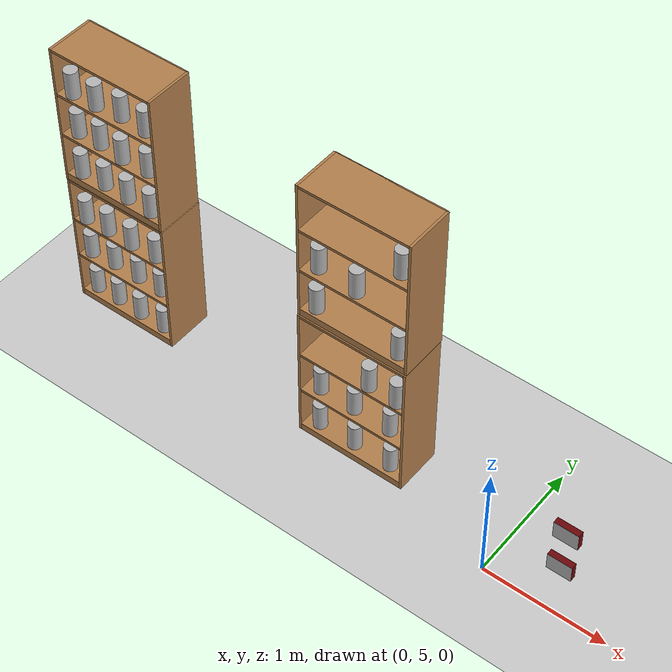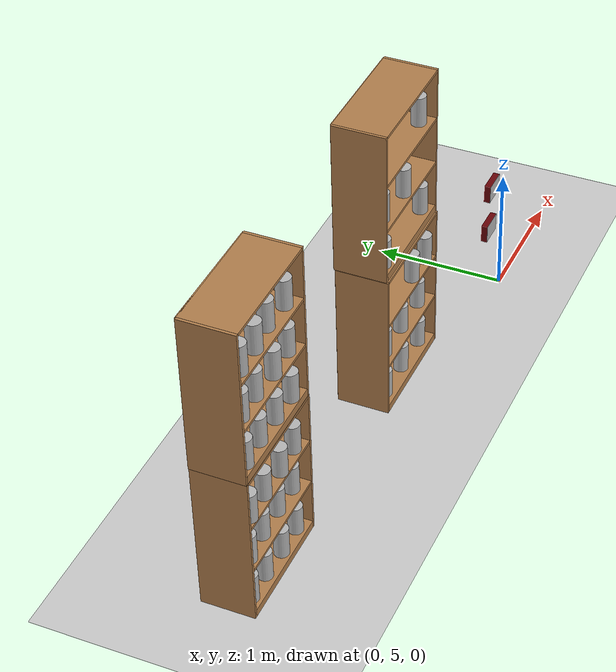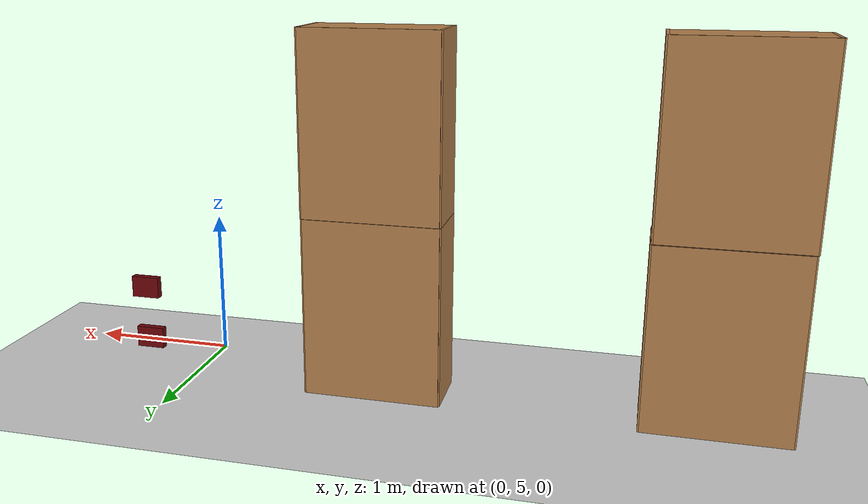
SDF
<sdf version="1.7">
 <world name="default">
  <model name="ground_plane">
   <static>1</static>
   <link name="link">
    <collision name="collision">
     <geometry><plane><normal>0 0 1</normal><size>100 100</size></plane></geometry>
     <surface><friction><ode><mu>100</mu><mu2>50</mu2></ode></friction></surface>
    </collision>
    <visual name="visual">
     <cast_shadows>0</cast_shadows>
     <geometry><plane><normal>0 0 1</normal><size>100 100</size></plane></geometry>
     <material>
      <script><uri>file://media/materials/scripts/gazebo.material</uri><name>Gazebo/Grey</name></script>
     </material>
    </visual>
   </link>
  </model>
  <model name="bookshelf_2_clone">
   <static>1</static>
   <link name="link">
    <inertial><mass>1</mass></inertial>
    <collision name="back">
     <pose>0 0.005 0.6 0 -0 0</pose>
     <geometry><box><size>0.9 0.01 1.2</size></box></geometry>
    </collision>
    <visual name="visual1">
     <pose>0 0.005 0.6 0 -0 0</pose>
     <geometry><box><size>0.9 0.01 1.2</size></box></geometry>
     <material>
      <script><uri>file://media/materials/scripts/gazebo.material</uri><name>Gazebo/Wood</name></script>
     </material>
    </visual>
    <collision name="left_side">
     <pose>0.45 -0.195 0.6 0 -0 0</pose>
     <geometry><box><size>0.02 0.4 1.2</size></box></geometry>
    </collision>
    <visual name="visual2">
     <pose>0.45 -0.195 0.6 0 -0 0</pose>
     <geometry><box><size>0.02 0.4 1.2</size></box></geometry>
     <material>
      <script><uri>file://media/materials/scripts/gazebo.material</uri><name>Gazebo/Wood</name></script>
     </material>
    </visual>
    <collision name="right_side">
     <pose>-0.45 -0.195 0.6 0 -0 0</pose>
     <geometry><box><size>0.02 0.4 1.2</size></box></geometry>
    </collision>
    <visual name="visual3">
     <pose>-0.45 -0.195 0.6 0 -0 0</pose>
     <geometry><box><size>0.02 0.4 1.2</size></box></geometry>
     <material>
      <script><uri>file://media/materials/scripts/gazebo.material</uri><name>Gazebo/Wood</name></script>
     </material>
    </visual>
    <collision name="bottom">
     <pose>0 -0.195 0.03 0 -0 0</pose>
     <geometry><box><size>0.88 0.4 0.06</size></box></geometry>
    </collision>
    <visual name="visual4">
     <pose>0 -0.195 0.03 0 -0 0</pose>
     <geometry><box><size>0.88 0.4 0.06</size></box></geometry>
     <material>
      <script><uri>file://media/materials/scripts/gazebo.material</uri><name>Gazebo/Wood</name></script>
     </material>
    </visual>
    <collision name="top">
     <pose>0 -0.195 1.19 0 -0 0</pose>
     <geometry><box><size>0.88 0.4 0.02</size></box></geometry>
    </collision>
    <visual name="visual5">
     <pose>0 -0.195 1.19 0 -0 0</pose>
     <geometry><box><size>0.88 0.4 0.02</size></box></geometry>
     <material>
      <script><uri>file://media/materials/scripts/gazebo.material</uri><name>Gazebo/Wood</name></script>
     </material>
    </visual>
    <collision name="low_shelf">
     <pose>0 -0.195 0.43 0 -0 0</pose>
     <geometry><box><size>0.88 0.4 0.02</size></box></geometry>
    </collision>
    <visual name="visual6">
     <pose>0 -0.195 0.43 0 -0 0</pose>
     <geometry><box><size>0.88 0.4 0.02</size></box></geometry>
     <material>
      <script><uri>file://media/materials/scripts/gazebo.material</uri><name>Gazebo/Wood</name></script>
     </material>
    </visual>
    <collision name="high_shelf">
     <pose>0 -0.195 0.8 0 -0 0</pose>
     <geometry><box><size>0.88 0.4 0.02</size></box></geometry>
    </collision>
    <visual name="visual7">
     <pose>0 -0.195 0.8 0 -0 0</pose>
     <geometry><box><size>0.88 0.4 0.02</size></box></geometry>
     <material>
      <script><uri>file://media/materials/scripts/gazebo.material</uri><name>Gazebo/Wood</name></script>
     </material>
    </visual>
   </link>
   <pose>-1.30264 5.59901 0 0 -0 0</pose>
  </model>
  <model name="bookshelf_2_clone_clone">
   <static>1</static>
   <link name="link">
    <inertial><mass>1</mass></inertial>
    <collision name="back">
     <pose>0 0.005 0.6 0 -0 0</pose>
     <geometry><box><size>0.9 0.01 1.2</size></box></geometry>
    </collision>
    <visual name="visual1">
     <pose>0 0.005 0.6 0 -0 0</pose>
     <geometry><box><size>0.9 0.01 1.2</size></box></geometry>
     <material>
      <script><uri>file://media/materials/scripts/gazebo.material</uri><name>Gazebo/Wood</name></script>
     </material>
    </visual>
    <collision name="left_side">
     <pose>0.45 -0.195 0.6 0 -0 0</pose>
     <geometry><box><size>0.02 0.4 1.2</size></box></geometry>
    </collision>
    <visual name="visual2">
     <pose>0.45 -0.195 0.6 0 -0 0</pose>
     <geometry><box><size>0.02 0.4 1.2</size></box></geometry>
     <material>
      <script><uri>file://media/materials/scripts/gazebo.material</uri><name>Gazebo/Wood</name></script>
     </material>
    </visual>
    <collision name="right_side">
     <pose>-0.45 -0.195 0.6 0 -0 0</pose>
     <geometry><box><size>0.02 0.4 1.2</size></box></geometry>
    </collision>
    <visual name="visual3">
     <pose>-0.45 -0.195 0.6 0 -0 0</pose>
     <geometry><box><size>0.02 0.4 1.2</size></box></geometry>
     <material>
      <script><uri>file://media/materials/scripts/gazebo.material</uri><name>Gazebo/Wood</name></script>
     </material>
    </visual>
    <collision name="bottom">
     <pose>0 -0.195 0.03 0 -0 0</pose>
     <geometry><box><size>0.88 0.4 0.06</size></box></geometry>
    </collision>
    <visual name="visual4">
     <pose>0 -0.195 0.03 0 -0 0</pose>
     <geometry><box><size>0.88 0.4 0.06</size></box></geometry>
     <material>
      <script><uri>file://media/materials/scripts/gazebo.material</uri><name>Gazebo/Wood</name></script>
     </material>
    </visual>
    <collision name="top">
     <pose>0 -0.195 1.19 0 -0 0</pose>
     <geometry><box><size>0.88 0.4 0.02</size></box></geometry>
    </collision>
    <visual name="visual5">
     <pose>0 -0.195 1.19 0 -0 0</pose>
     <geometry><box><size>0.88 0.4 0.02</size></box></geometry>
     <material>
      <script><uri>file://media/materials/scripts/gazebo.material</uri><name>Gazebo/Wood</name></script>
     </material>
    </visual>
    <collision name="low_shelf">
     <pose>0 -0.195 0.43 0 -0 0</pose>
     <geometry><box><size>0.88 0.4 0.02</size></box></geometry>
    </collision>
    <visual name="visual6">
     <pose>0 -0.195 0.43 0 -0 0</pose>
     <geometry><box><size>0.88 0.4 0.02</size></box></geometry>
     <material>
      <script><uri>file://media/materials/scripts/gazebo.material</uri><name>Gazebo/Wood</name></script>
     </material>
    </visual>
    <collision name="high_shelf">
     <pose>0 -0.195 0.8 0 -0 0</pose>
     <geometry><box><size>0.88 0.4 0.02</size></box></geometry>
    </collision>
    <visual name="visual7">
     <pose>0 -0.195 0.8 0 -0 0</pose>
     <geometry><box><size>0.88 0.4 0.02</size></box></geometry>
     <material>
      <script><uri>file://media/materials/scripts/gazebo.material</uri><name>Gazebo/Wood</name></script>
     </material>
    </visual>
   </link>
   <pose>-3.46853 5.62428 0 0 -0 0</pose>
  </model>
  <model name="bookshelf_3_clone">
   <static>1</static>
   <link name="link">
    <inertial><mass>1</mass></inertial>
    <collision name="back">
     <pose>0 0.005 0.6 0 -0 0</pose>
     <geometry><box><size>0.9 0.01 1.2</size></box></geometry>
    </collision>
    <visual name="visual1">
     <pose>0 0.005 0.6 0 -0 0</pose>
     <geometry><box><size>0.9 0.01 1.2</size></box></geometry>
     <material>
      <script><uri>file://media/materials/scripts/gazebo.material</uri><name>Gazebo/Wood</name></script>
     </material>
    </visual>
    <collision name="left_side">
     <pose>0.45 -0.195 0.6 0 -0 0</pose>
     <geometry><box><size>0.02 0.4 1.2</size></box></geometry>
    </collision>
    <visual name="visual2">
     <pose>0.45 -0.195 0.6 0 -0 0</pose>
     <geometry><box><size>0.02 0.4 1.2</size></box></geometry>
     <material>
      <script><uri>file://media/materials/scripts/gazebo.material</uri><name>Gazebo/Wood</name></script>
     </material>
    </visual>
    <collision name="right_side">
     <pose>-0.45 -0.195 0.6 0 -0 0</pose>
     <geometry><box><size>0.02 0.4 1.2</size></box></geometry>
    </collision>
    <visual name="visual3">
     <pose>-0.45 -0.195 0.6 0 -0 0</pose>
     <geometry><box><size>0.02 0.4 1.2</size></box></geometry>
     <material>
      <script><uri>file://media/materials/scripts/gazebo.material</uri><name>Gazebo/Wood</name></script>
     </material>
    </visual>
    <collision name="bottom">
     <pose>0 -0.195 0.03 0 -0 0</pose>
     <geometry><box><size>0.88 0.4 0.06</size></box></geometry>
    </collision>
    <visual name="visual4">
     <pose>0 -0.195 0.03 0 -0 0</pose>
     <geometry><box><size>0.88 0.4 0.06</size></box></geometry>
     <material>
      <script><uri>file://media/materials/scripts/gazebo.material</uri><name>Gazebo/Wood</name></script>
     </material>
    </visual>
    <collision name="top">
     <pose>0 -0.195 1.19 0 -0 0</pose>
     <geometry><box><size>0.88 0.4 0.02</size></box></geometry>
    </collision>
    <visual name="visual5">
     <pose>0 -0.195 1.19 0 -0 0</pose>
     <geometry><box><size>0.88 0.4 0.02</size></box></geometry>
     <material>
      <script><uri>file://media/materials/scripts/gazebo.material</uri><name>Gazebo/Wood</name></script>
     </material>
    </visual>
    <collision name="low_shelf">
     <pose>0 -0.195 0.43 0 -0 0</pose>
     <geometry><box><size>0.88 0.4 0.02</size></box></geometry>
    </collision>
    <visual name="visual6">
     <pose>0 -0.195 0.43 0 -0 0</pose>
     <geometry><box><size>0.88 0.4 0.02</size></box></geometry>
     <material>
      <script><uri>file://media/materials/scripts/gazebo.material</uri><name>Gazebo/Wood</name></script>
     </material>
    </visual>
    <collision name="high_shelf">
     <pose>0 -0.195 0.8 0 -0 0</pose>
     <geometry><box><size>0.88 0.4 0.02</size></box></geometry>
    </collision>
    <visual name="visual7">
     <pose>0 -0.195 0.8 0 -0 0</pose>
     <geometry><box><size>0.88 0.4 0.02</size></box></geometry>
     <material>
      <script><uri>file://media/materials/scripts/gazebo.material</uri><name>Gazebo/Wood</name></script>
     </material>
    </visual>
   </link>
   <pose>-1.30336 5.6079 1.20481 0 -0 0</pose>
  </model>
  <model name="bookshelf_3_clone_clone">
   <static>1</static>
   <link name="link">
    <inertial><mass>1</mass></inertial>
    <collision name="back">
     <pose>0 0.005 0.6 0 -0 0</pose>
     <geometry><box><size>0.9 0.01 1.2</size></box></geometry>
    </collision>
    <visual name="visual1">
     <pose>0 0.005 0.6 0 -0 0</pose>
     <geometry><box><size>0.9 0.01 1.2</size></box></geometry>
     <material>
      <script><uri>file://media/materials/scripts/gazebo.material</uri><name>Gazebo/Wood</name></script>
     </material>
    </visual>
    <collision name="left_side">
     <pose>0.45 -0.195 0.6 0 -0 0</pose>
     <geometry><box><size>0.02 0.4 1.2</size></box></geometry>
    </collision>
    <visual name="visual2">
     <pose>0.45 -0.195 0.6 0 -0 0</pose>
     <geometry><box><size>0.02 0.4 1.2</size></box></geometry>
     <material>
      <script><uri>file://media/materials/scripts/gazebo.material</uri><name>Gazebo/Wood</name></script>
     </material>
    </visual>
    <collision name="right_side">
     <pose>-0.45 -0.195 0.6 0 -0 0</pose>
     <geometry><box><size>0.02 0.4 1.2</size></box></geometry>
    </collision>
    <visual name="visual3">
     <pose>-0.45 -0.195 0.6 0 -0 0</pose>
     <geometry><box><size>0.02 0.4 1.2</size></box></geometry>
     <material>
      <script><uri>file://media/materials/scripts/gazebo.material</uri><name>Gazebo/Wood</name></script>
     </material>
    </visual>
    <collision name="bottom">
     <pose>0 -0.195 0.03 0 -0 0</pose>
     <geometry><box><size>0.88 0.4 0.06</size></box></geometry>
    </collision>
    <visual name="visual4">
     <pose>0 -0.195 0.03 0 -0 0</pose>
     <geometry><box><size>0.88 0.4 0.06</size></box></geometry>
     <material>
      <script><uri>file://media/materials/scripts/gazebo.material</uri><name>Gazebo/Wood</name></script>
     </material>
    </visual>
    <collision name="top">
     <pose>0 -0.195 1.19 0 -0 0</pose>
     <geometry><box><size>0.88 0.4 0.02</size></box></geometry>
    </collision>
    <visual name="visual5">
     <pose>0 -0.195 1.19 0 -0 0</pose>
     <geometry><box><size>0.88 0.4 0.02</size></box></geometry>
     <material>
      <script><uri>file://media/materials/scripts/gazebo.material</uri><name>Gazebo/Wood</name></script>
     </material>
    </visual>
    <collision name="low_shelf">
     <pose>0 -0.195 0.43 0 -0 0</pose>
     <geometry><box><size>0.88 0.4 0.02</size></box></geometry>
    </collision>
    <visual name="visual6">
     <pose>0 -0.195 0.43 0 -0 0</pose>
     <geometry><box><size>0.88 0.4 0.02</size></box></geometry>
     <material>
      <script><uri>file://media/materials/scripts/gazebo.material</uri><name>Gazebo/Wood</name></script>
     </material>
    </visual>
    <collision name="high_shelf">
     <pose>0 -0.195 0.8 0 -0 0</pose>
     <geometry><box><size>0.88 0.4 0.02</size></box></geometry>
    </collision>
    <visual name="visual7">
     <pose>0 -0.195 0.8 0 -0 0</pose>
     <geometry><box><size>0.88 0.4 0.02</size></box></geometry>
     <material>
      <script><uri>file://media/materials/scripts/gazebo.material</uri><name>Gazebo/Wood</name></script>
     </material>
    </visual>
   </link>
   <pose>-3.47373 5.62521 1.20481 0 -0 0</pose>
  </model>
  <model name="beer">
   <link name="link">
    <pose>0 0 0.115 0 -0 0</pose>
    <inertial>
     <mass>0.39</mass>
     <inertia><ixx>0.00058</ixx><ixy>0</ixy><ixz>0</ixz><iyy>0.00058</iyy><iyz>0</iyz><izz>0.00019</izz></inertia>
    </inertial>
    <collision name="collision">
     <geometry><cylinder><radius>0.055</radius><length>0.23</length></cylinder></geometry>
    </collision>
    <visual name="visual">
     <geometry><cylinder><radius>0.055</radius><length>0.23</length></cylinder></geometry>
     <material>
      <script>
       <uri>model://beer/materials/scripts</uri>
       <uri>model://beer/materials/textures</uri>
       <name>Beer/Diffuse</name>
      </script>
     </material>
    </visual>
   </link>
   <pose>-3.82314 5.30778 0.059992 -1e-06 2.7e-05 0.029029</pose>
  </model>
  <model name="beer_0">
   <link name="link">
    <pose>0 0 0.115 0 -0 0</pose>
    <inertial>
     <mass>0.39</mass>
     <inertia><ixx>0.00058</ixx><ixy>0</ixy><ixz>0</ixz><iyy>0.00058</iyy><iyz>0</iyz><izz>0.00019</izz></inertia>
    </inertial>
    <collision name="collision">
     <geometry><cylinder><radius>0.055</radius><length>0.23</length></cylinder></geometry>
    </collision>
    <visual name="visual">
     <geometry><cylinder><radius>0.055</radius><length>0.23</length></cylinder></geometry>
     <material>
      <script>
       <uri>model://beer/materials/scripts</uri>
       <uri>model://beer/materials/textures</uri>
       <name>Beer/Diffuse</name>
      </script>
     </material>
    </visual>
   </link>
   <pose>-3.60608 5.31041 0.05999 2e-06 -1e-06 0.052937</pose>
  </model>
  <model name="beer_1">
   <link name="link">
    <pose>0 0 0.115 0 -0 0</pose>
    <inertial>
     <mass>0.39</mass>
     <inertia><ixx>0.00058</ixx><ixy>0</ixy><ixz>0</ixz><iyy>0.00058</iyy><iyz>0</iyz><izz>0.00019</izz></inertia>
    </inertial>
    <collision name="collision">
     <geometry><cylinder><radius>0.055</radius><length>0.23</length></cylinder></geometry>
    </collision>
    <visual name="visual">
     <geometry><cylinder><radius>0.055</radius><length>0.23</length></cylinder></geometry>
     <material>
      <script>
       <uri>model://beer/materials/scripts</uri>
       <uri>model://beer/materials/textures</uri>
       <name>Beer/Diffuse</name>
      </script>
     </material>
    </visual>
   </link>
   <pose>-3.37527 5.2992 0.06 9e-06 2e-06 0.025688</pose>
  </model>
  <model name="beer_2">
   <link name="link">
    <pose>0 0 0.115 0 -0 0</pose>
    <inertial>
     <mass>0.39</mass>
     <inertia><ixx>0.00058</ixx><ixy>0</ixy><ixz>0</ixz><iyy>0.00058</iyy><iyz>0</iyz><izz>0.00019</izz></inertia>
    </inertial>
    <collision name="collision">
     <geometry><cylinder><radius>0.055</radius><length>0.23</length></cylinder></geometry>
    </collision>
    <visual name="visual">
     <geometry><cylinder><radius>0.055</radius><length>0.23</length></cylinder></geometry>
     <material>
      <script>
       <uri>model://beer/materials/scripts</uri>
       <uri>model://beer/materials/textures</uri>
       <name>Beer/Diffuse</name>
      </script>
     </material>
    </visual>
   </link>
   <pose>-3.14454 5.30307 0.060001 2.4e-05 1e-06 0.007946</pose>
  </model>
  <model name="beer_3_clone">
   <link name="link">
    <pose>0 0 0.115 0 -0 0</pose>
    <inertial>
     <mass>0.39</mass>
     <inertia><ixx>0.00058</ixx><ixy>0</ixy><ixz>0</ixz><iyy>0.00058</iyy><iyz>0</iyz><izz>0.00019</izz></inertia>
    </inertial>
    <collision name="collision">
     <geometry><cylinder><radius>0.055</radius><length>0.23</length></cylinder></geometry>
    </collision>
    <visual name="visual">
     <geometry><cylinder><radius>0.055</radius><length>0.23</length></cylinder></geometry>
     <material>
      <script>
       <uri>model://beer/materials/scripts</uri>
       <uri>model://beer/materials/textures</uri>
       <name>Beer/Diffuse</name>
      </script>
     </material>
    </visual>
   </link>
   <pose>-3.6091 5.31393 0.439992 -1e-06 2.7e-05 0.044711</pose>
  </model>
  <model name="beer_3_clone_0">
   <link name="link">
    <pose>0 0 0.115 0 -0 0</pose>
    <inertial>
     <mass>0.39</mass>
     <inertia><ixx>0.00058</ixx><ixy>0</ixy><ixz>0</ixz><iyy>0.00058</iyy><iyz>0</iyz><izz>0.00019</izz></inertia>
    </inertial>
    <collision name="collision">
     <geometry><cylinder><radius>0.055</radius><length>0.23</length></cylinder></geometry>
    </collision>
    <visual name="visual">
     <geometry><cylinder><radius>0.055</radius><length>0.23</length></cylinder></geometry>
     <material>
      <script>
       <uri>model://beer/materials/scripts</uri>
       <uri>model://beer/materials/textures</uri>
       <name>Beer/Diffuse</name>
      </script>
     </material>
    </visual>
   </link>
   <pose>-3.37392 5.31587 0.440001 5e-06 -1.3e-05 0.026276</pose>
  </model>
  <model name="beer_3_clone_1">
   <link name="link">
    <pose>0 0 0.115 0 -0 0</pose>
    <inertial>
     <mass>0.39</mass>
     <inertia><ixx>0.00058</ixx><ixy>0</ixy><ixz>0</ixz><iyy>0.00058</iyy><iyz>0</iyz><izz>0.00019</izz></inertia>
    </inertial>
    <collision name="collision">
     <geometry><cylinder><radius>0.055</radius><length>0.23</length></cylinder></geometry>
    </collision>
    <visual name="visual">
     <geometry><cylinder><radius>0.055</radius><length>0.23</length></cylinder></geometry>
     <material>
      <script>
       <uri>model://beer/materials/scripts</uri>
       <uri>model://beer/materials/textures</uri>
       <name>Beer/Diffuse</name>
      </script>
     </material>
    </visual>
   </link>
   <pose>-3.15006 5.31591 0.439992 2.4e-05 1.3e-05 0.011095</pose>
  </model>
  <model name="beer_1_clone">
   <link name="link">
    <pose>0 0 0.115 0 -0 0</pose>
    <inertial>
     <mass>0.39</mass>
     <inertia><ixx>0.00058</ixx><ixy>0</ixy><ixz>0</ixz><iyy>0.00058</iyy><iyz>0</iyz><izz>0.00019</izz></inertia>
    </inertial>
    <collision name="collision">
     <geometry><cylinder><radius>0.055</radius><length>0.23</length></cylinder></geometry>
    </collision>
    <visual name="visual">
     <geometry><cylinder><radius>0.055</radius><length>0.23</length></cylinder></geometry>
     <material>
      <script>
       <uri>model://beer/materials/scripts</uri>
       <uri>model://beer/materials/textures</uri>
       <name>Beer/Diffuse</name>
      </script>
     </material>
    </visual>
   </link>
   <pose>-1.63127 5.28748 0.060001 1e-06 -2.7e-05 0.022492</pose>
  </model>
  <model name="beer_1_clone_0">
   <link name="link">
    <pose>0 0 0.115 0 -0 0</pose>
    <inertial>
     <mass>0.39</mass>
     <inertia><ixx>0.00058</ixx><ixy>0</ixy><ixz>0</ixz><iyy>0.00058</iyy><iyz>0</iyz><izz>0.00019</izz></inertia>
    </inertial>
    <collision name="collision">
     <geometry><cylinder><radius>0.055</radius><length>0.23</length></cylinder></geometry>
    </collision>
    <visual name="visual">
     <geometry><cylinder><radius>0.055</radius><length>0.23</length></cylinder></geometry>
     <material>
      <script>
       <uri>model://beer/materials/scripts</uri>
       <uri>model://beer/materials/textures</uri>
       <name>Beer/Diffuse</name>
      </script>
     </material>
    </visual>
   </link>
   <pose>-1.32035 5.2893 0.060001 -2e-06 2.8e-05 0.026192</pose>
  </model>
  <model name="beer_1_clone_1">
   <link name="link">
    <pose>0 0 0.115 0 -0 0</pose>
    <inertial>
     <mass>0.39</mass>
     <inertia><ixx>0.00058</ixx><ixy>0</ixy><ixz>0</ixz><iyy>0.00058</iyy><iyz>0</iyz><izz>0.00019</izz></inertia>
    </inertial>
    <collision name="collision">
     <geometry><cylinder><radius>0.055</radius><length>0.23</length></cylinder></geometry>
    </collision>
    <visual name="visual">
     <geometry><cylinder><radius>0.055</radius><length>0.23</length></cylinder></geometry>
     <material>
      <script>
       <uri>model://beer/materials/scripts</uri>
       <uri>model://beer/materials/textures</uri>
       <name>Beer/Diffuse</name>
      </script>
     </material>
    </visual>
   </link>
   <pose>-0.999996 5.28651 0.060001 1.3e-05 -1.6e-05 0.008039</pose>
  </model>
  <model name="beer_3_clone_1_clone">
   <link name="link">
    <pose>0 0 0.115 0 -0 0</pose>
    <inertial>
     <mass>0.39</mass>
     <inertia><ixx>0.00058</ixx><ixy>0</ixy><ixz>0</ixz><iyy>0.00058</iyy><iyz>0</iyz><izz>0.00019</izz></inertia>
    </inertial>
    <collision name="collision">
     <geometry><cylinder><radius>0.055</radius><length>0.23</length></cylinder></geometry>
    </collision>
    <visual name="visual">
     <geometry><cylinder><radius>0.055</radius><length>0.23</length></cylinder></geometry>
     <material>
      <script>
       <uri>model://beer/materials/scripts</uri>
       <uri>model://beer/materials/textures</uri>
       <name>Beer/Diffuse</name>
      </script>
     </material>
    </visual>
   </link>
   <pose>-1.62511 5.29265 0.440001 1e-06 -2.7e-05 0.023217</pose>
  </model>
  <model name="beer_3_clone_1_clone_0">
   <link name="link">
    <pose>0 0 0.115 0 -0 0</pose>
    <inertial>
     <mass>0.39</mass>
     <inertia><ixx>0.00058</ixx><ixy>0</ixy><ixz>0</ixz><iyy>0.00058</iyy><iyz>0</iyz><izz>0.00019</izz></inertia>
    </inertial>
    <collision name="collision">
     <geometry><cylinder><radius>0.055</radius><length>0.23</length></cylinder></geometry>
    </collision>
    <visual name="visual">
     <geometry><cylinder><radius>0.055</radius><length>0.23</length></cylinder></geometry>
     <material>
      <script>
       <uri>model://beer/materials/scripts</uri>
       <uri>model://beer/materials/textures</uri>
       <name>Beer/Diffuse</name>
      </script>
     </material>
    </visual>
   </link>
   <pose>-1.32669 5.29028 0.440001 1e-06 -2.7e-05 0.030933</pose>
  </model>
  <model name="beer_3_clone_1_clone_1">
   <link name="link">
    <pose>0 0 0.115 0 -0 0</pose>
    <inertial>
     <mass>0.39</mass>
     <inertia><ixx>0.00058</ixx><ixy>0</ixy><ixz>0</ixz><iyy>0.00058</iyy><iyz>0</iyz><izz>0.00019</izz></inertia>
    </inertial>
    <collision name="collision">
     <geometry><cylinder><radius>0.055</radius><length>0.23</length></cylinder></geometry>
    </collision>
    <visual name="visual">
     <geometry><cylinder><radius>0.055</radius><length>0.23</length></cylinder></geometry>
     <material>
      <script>
       <uri>model://beer/materials/scripts</uri>
       <uri>model://beer/materials/textures</uri>
       <name>Beer/Diffuse</name>
      </script>
     </material>
    </visual>
   </link>
   <pose>-1.01341 5.28789 0.440001 9e-06 -1e-05 0.003408</pose>
  </model>
  <model name="biscuit_box">
   <link name="link">
    <pose>0 0 0.025 0 -0 0</pose>
    <visual name="visual">
     <geometry><box><size>0.2 0.15 0.05</size></box></geometry>
     <material>
      <ambient>0.423 0.019 0.035 1</ambient>
      <diffuse>0.423 0.019 0.035 1</diffuse>
      <specular>0.01 0.01 0.01 1</specular>
      <emissive>0 0 0 1</emissive>
     </material>
    </visual>
    <collision name="collision"><geometry><box><size>0.1 0.1 0.15</size></box></geometry></collision>
   </link>
   <link name="link_1">
    <pose>0 0 0.05 0 -0 0</pose>
    <visual name="visual">
     <geometry><box><size>0.2 0.15 0.001</size></box></geometry>
     <material>
      <script>
       <uri>model://biscuit_box/materials/scripts</uri>
       <uri>model://biscuit_box/materials/textures</uri>
       <name>biscuit_pat</name>
      </script>
     </material>
    </visual>
    <collision name="collision"><geometry><box><size>0.1 0.1 0.15</size></box></geometry></collision>
   </link>
   <static>1</static>
   <pose>0.456028 5.28742 0.137981 1.59184 -0 0</pose>
  </model>
  <model name="beer_3_clone_clone_0">
   <link name="link">
    <pose>0 0 0.115 0 -0 0</pose>
    <inertial>
     <mass>0.39</mass>
     <inertia><ixx>0.00058</ixx><ixy>0</ixy><ixz>0</ixz><iyy>0.00058</iyy><iyz>0</iyz><izz>0.00019</izz></inertia>
    </inertial>
    <collision name="collision">
     <geometry><cylinder><radius>0.055</radius><length>0.23</length></cylinder></geometry>
    </collision>
    <visual name="visual">
     <geometry><cylinder><radius>0.055</radius><length>0.23</length></cylinder></geometry>
     <material>
      <script>
       <uri>model://beer/materials/scripts</uri>
       <uri>model://beer/materials/textures</uri>
       <name>Beer/Diffuse</name>
      </script>
     </material>
    </visual>
   </link>
   <pose>-3.8305 5.29906 0.440002 8e-06 3.7e-05 0.033167</pose>
  </model>
  <model name="beer_3_clone_clone_clone">
   <link name="link">
    <pose>0 0 0.115 0 -0 0</pose>
    <inertial>
     <mass>0.39</mass>
     <inertia><ixx>0.00058</ixx><ixy>0</ixy><ixz>0</ixz><iyy>0.00058</iyy><iyz>0</iyz><izz>0.00019</izz></inertia>
    </inertial>
    <collision name="collision">
     <geometry><cylinder><radius>0.055</radius><length>0.23</length></cylinder></geometry>
    </collision>
    <visual name="visual">
     <geometry><cylinder><radius>0.055</radius><length>0.23</length></cylinder></geometry>
     <material>
      <script>
       <uri>model://beer/materials/scripts</uri>
       <uri>model://beer/materials/textures</uri>
       <name>Beer/Diffuse</name>
      </script>
     </material>
    </visual>
   </link>
   <pose>-3.6092 5.2856 0.809994 6.8e-05 -7e-06 0.027428</pose>
  </model>
  <model name="beer_3_clone_clone_clone_clone">
   <link name="link">
    <pose>0 0 0.115 0 -0 0</pose>
    <inertial>
     <mass>0.39</mass>
     <inertia><ixx>0.00058</ixx><ixy>0</ixy><ixz>0</ixz><iyy>0.00058</iyy><iyz>0</iyz><izz>0.00019</izz></inertia>
    </inertial>
    <collision name="collision">
     <geometry><cylinder><radius>0.055</radius><length>0.23</length></cylinder></geometry>
    </collision>
    <visual name="visual">
     <geometry><cylinder><radius>0.055</radius><length>0.23</length></cylinder></geometry>
     <material>
      <script>
       <uri>model://beer/materials/scripts</uri>
       <uri>model://beer/materials/textures</uri>
       <name>Beer/Diffuse</name>
      </script>
     </material>
    </visual>
   </link>
   <pose>-3.37634 5.28049 0.810001 2e-06 -2.6e-05 0.022455</pose>
  </model>
  <model name="beer_3_clone_clone_clone_clone_0">
   <link name="link">
    <pose>0 0 0.115 0 -0 0</pose>
    <inertial>
     <mass>0.39</mass>
     <inertia><ixx>0.00058</ixx><ixy>0</ixy><ixz>0</ixz><iyy>0.00058</iyy><iyz>0</iyz><izz>0.00019</izz></inertia>
    </inertial>
    <collision name="collision">
     <geometry><cylinder><radius>0.055</radius><length>0.23</length></cylinder></geometry>
    </collision>
    <visual name="visual">
     <geometry><cylinder><radius>0.055</radius><length>0.23</length></cylinder></geometry>
     <material>
      <script>
       <uri>model://beer/materials/scripts</uri>
       <uri>model://beer/materials/textures</uri>
       <name>Beer/Diffuse</name>
      </script>
     </material>
    </visual>
   </link>
   <pose>-3.14856 5.29384 0.810001 -6e-06 -1.6e-05 0.0238</pose>
  </model>
  <model name="beer_3_clone_clone_clone_clone_2">
   <link name="link">
    <pose>0 0 0.115 0 -0 0</pose>
    <inertial>
     <mass>0.39</mass>
     <inertia><ixx>0.00058</ixx><ixy>0</ixy><ixz>0</ixz><iyy>0.00058</iyy><iyz>0</iyz><izz>0.00019</izz></inertia>
    </inertial>
    <collision name="collision">
     <geometry><cylinder><radius>0.055</radius><length>0.23</length></cylinder></geometry>
    </collision>
    <visual name="visual">
     <geometry><cylinder><radius>0.055</radius><length>0.23</length></cylinder></geometry>
     <material>
      <script>
       <uri>model://beer/materials/scripts</uri>
       <uri>model://beer/materials/textures</uri>
       <name>Beer/Diffuse</name>
      </script>
     </material>
    </visual>
   </link>
   <pose>-3.82307 5.28077 0.810003 2.6e-05 3.8e-05 0.023195</pose>
  </model>
  <model name="beer_3_clone_clone_clone_clone_1_clone">
   <link name="link">
    <pose>0 0 0.115 0 -0 0</pose>
    <inertial>
     <mass>0.39</mass>
     <inertia><ixx>0.00058</ixx><ixy>0</ixy><ixz>0</ixz><iyy>0.00058</iyy><iyz>0</iyz><izz>0.00019</izz></inertia>
    </inertial>
    <collision name="collision">
     <geometry><cylinder><radius>0.055</radius><length>0.23</length></cylinder></geometry>
    </collision>
    <visual name="visual">
     <geometry><cylinder><radius>0.055</radius><length>0.23</length></cylinder></geometry>
     <material>
      <script>
       <uri>model://beer/materials/scripts</uri>
       <uri>model://beer/materials/textures</uri>
       <name>Beer/Diffuse</name>
      </script>
     </material>
    </visual>
   </link>
   <pose>-3.60044 5.30004 1.2648 1.3e-05 -2.2e-05 0.037175</pose>
  </model>
  <model name="beer_3_clone_clone_clone_clone_1_clone_0">
   <link name="link">
    <pose>0 0 0.115 0 -0 0</pose>
    <inertial>
     <mass>0.39</mass>
     <inertia><ixx>0.00058</ixx><ixy>0</ixy><ixz>0</ixz><iyy>0.00058</iyy><iyz>0</iyz><izz>0.00019</izz></inertia>
    </inertial>
    <collision name="collision">
     <geometry><cylinder><radius>0.055</radius><length>0.23</length></cylinder></geometry>
    </collision>
    <visual name="visual">
     <geometry><cylinder><radius>0.055</radius><length>0.23</length></cylinder></geometry>
     <material>
      <script>
       <uri>model://beer/materials/scripts</uri>
       <uri>model://beer/materials/textures</uri>
       <name>Beer/Diffuse</name>
      </script>
     </material>
    </visual>
   </link>
   <pose>-3.37674 5.29469 1.26481 -1e-06 -1e-06 0.029807</pose>
  </model>
  <model name="beer_3_clone_clone_clone_clone_1_clone_1">
   <link name="link">
    <pose>0 0 0.115 0 -0 0</pose>
    <inertial>
     <mass>0.39</mass>
     <inertia><ixx>0.00058</ixx><ixy>0</ixy><ixz>0</ixz><iyy>0.00058</iyy><iyz>0</iyz><izz>0.00019</izz></inertia>
    </inertial>
    <collision name="collision">
     <geometry><cylinder><radius>0.055</radius><length>0.23</length></cylinder></geometry>
    </collision>
    <visual name="visual">
     <geometry><cylinder><radius>0.055</radius><length>0.23</length></cylinder></geometry>
     <material>
      <script>
       <uri>model://beer/materials/scripts</uri>
       <uri>model://beer/materials/textures</uri>
       <name>Beer/Diffuse</name>
      </script>
     </material>
    </visual>
   </link>
   <pose>-3.15286 5.28933 1.2648 5.7e-05 -9e-06 0.024871</pose>
  </model>
  <model name="beer_3_clone_clone_clone_clone_1_clone_clone">
   <link name="link">
    <pose>0 0 0.115 0 -0 0</pose>
    <inertial>
     <mass>0.39</mass>
     <inertia><ixx>0.00058</ixx><ixy>0</ixy><ixz>0</ixz><iyy>0.00058</iyy><iyz>0</iyz><izz>0.00019</izz></inertia>
    </inertial>
    <collision name="collision">
     <geometry><cylinder><radius>0.055</radius><length>0.23</length></cylinder></geometry>
    </collision>
    <visual name="visual">
     <geometry><cylinder><radius>0.055</radius><length>0.23</length></cylinder></geometry>
     <material>
      <script>
       <uri>model://beer/materials/scripts</uri>
       <uri>model://beer/materials/textures</uri>
       <name>Beer/Diffuse</name>
      </script>
     </material>
    </visual>
   </link>
   <pose>-3.81524 5.29073 1.26481 1e-06 -2.7e-05 0.028063</pose>
  </model>
  <model name="beer_3_clone_clone_clone_clone_1_clone_2">
   <link name="link">
    <pose>0 0 0.115 0 -0 0</pose>
    <inertial>
     <mass>0.39</mass>
     <inertia><ixx>0.00058</ixx><ixy>0</ixy><ixz>0</ixz><iyy>0.00058</iyy><iyz>0</iyz><izz>0.00019</izz></inertia>
    </inertial>
    <collision name="collision">
     <geometry><cylinder><radius>0.055</radius><length>0.23</length></cylinder></geometry>
    </collision>
    <visual name="visual">
     <geometry><cylinder><radius>0.055</radius><length>0.23</length></cylinder></geometry>
     <material>
      <script>
       <uri>model://beer/materials/scripts</uri>
       <uri>model://beer/materials/textures</uri>
       <name>Beer/Diffuse</name>
      </script>
     </material>
    </visual>
   </link>
   <pose>-3.60662 5.3081 1.6448 2.7e-05 1.3e-05 0.035027</pose>
  </model>
  <model name="beer_3_clone_clone_clone_clone_1_clone_3">
   <link name="link">
    <pose>0 0 0.115 0 -0 0</pose>
    <inertial>
     <mass>0.39</mass>
     <inertia><ixx>0.00058</ixx><ixy>0</ixy><ixz>0</ixz><iyy>0.00058</iyy><iyz>0</iyz><izz>0.00019</izz></inertia>
    </inertial>
    <collision name="collision">
     <geometry><cylinder><radius>0.055</radius><length>0.23</length></cylinder></geometry>
    </collision>
    <visual name="visual">
     <geometry><cylinder><radius>0.055</radius><length>0.23</length></cylinder></geometry>
     <material>
      <script>
       <uri>model://beer/materials/scripts</uri>
       <uri>model://beer/materials/textures</uri>
       <name>Beer/Diffuse</name>
      </script>
     </material>
    </visual>
   </link>
   <pose>-3.38442 5.28832 1.64481 2e-06 -2.7e-05 0.028267</pose>
  </model>
  <model name="beer_3_clone_clone_clone_clone_1_clone_4">
   <link name="link">
    <pose>0 0 0.115 0 -0 0</pose>
    <inertial>
     <mass>0.39</mass>
     <inertia><ixx>0.00058</ixx><ixy>0</ixy><ixz>0</ixz><iyy>0.00058</iyy><iyz>0</iyz><izz>0.00019</izz></inertia>
    </inertial>
    <collision name="collision">
     <geometry><cylinder><radius>0.055</radius><length>0.23</length></cylinder></geometry>
    </collision>
    <visual name="visual">
     <geometry><cylinder><radius>0.055</radius><length>0.23</length></cylinder></geometry>
     <material>
      <script>
       <uri>model://beer/materials/scripts</uri>
       <uri>model://beer/materials/textures</uri>
       <name>Beer/Diffuse</name>
      </script>
     </material>
    </visual>
   </link>
   <pose>-3.15389 5.30194 1.6448 1.7e-05 1.3e-05 0.025657</pose>
  </model>
  <model name="beer_3_clone_clone_clone_clone_1_clone_2_clone_0">
   <link name="link">
    <pose>0 0 0.115 0 -0 0</pose>
    <inertial>
     <mass>0.39</mass>
     <inertia><ixx>0.00058</ixx><ixy>0</ixy><ixz>0</ixz><iyy>0.00058</iyy><iyz>0</iyz><izz>0.00019</izz></inertia>
    </inertial>
    <collision name="collision">
     <geometry><cylinder><radius>0.055</radius><length>0.23</length></cylinder></geometry>
    </collision>
    <visual name="visual">
     <geometry><cylinder><radius>0.055</radius><length>0.23</length></cylinder></geometry>
     <material>
      <script>
       <uri>model://beer/materials/scripts</uri>
       <uri>model://beer/materials/textures</uri>
       <name>Beer/Diffuse</name>
      </script>
     </material>
    </visual>
   </link>
   <pose>-3.81191 5.30249 1.6448 1e-06 -2.7e-05 0.028388</pose>
  </model>
  <model name="beer_3_clone_clone_clone_clone_1_clone_2_clone_clone">
   <link name="link">
    <pose>0 0 0.115 0 -0 0</pose>
    <inertial>
     <mass>0.39</mass>
     <inertia><ixx>0.00058</ixx><ixy>0</ixy><ixz>0</ixz><iyy>0.00058</iyy><iyz>0</iyz><izz>0.00019</izz></inertia>
    </inertial>
    <collision name="collision">
     <geometry><cylinder><radius>0.055</radius><length>0.23</length></cylinder></geometry>
    </collision>
    <visual name="visual">
     <geometry><cylinder><radius>0.055</radius><length>0.23</length></cylinder></geometry>
     <material>
      <script>
       <uri>model://beer/materials/scripts</uri>
       <uri>model://beer/materials/textures</uri>
       <name>Beer/Diffuse</name>
      </script>
     </material>
    </visual>
   </link>
   <pose>-3.59672 5.29683 2.0148 -1e-06 2.6e-05 0.034094</pose>
  </model>
  <model name="beer_3_clone_clone_clone_clone_1_clone_2_clone_clone_clone">
   <link name="link">
    <pose>0 0 0.115 0 -0 0</pose>
    <inertial>
     <mass>0.39</mass>
     <inertia><ixx>0.00058</ixx><ixy>0</ixy><ixz>0</ixz><iyy>0.00058</iyy><iyz>0</iyz><izz>0.00019</izz></inertia>
    </inertial>
    <collision name="collision">
     <geometry><cylinder><radius>0.055</radius><length>0.23</length></cylinder></geometry>
    </collision>
    <visual name="visual">
     <geometry><cylinder><radius>0.055</radius><length>0.23</length></cylinder></geometry>
     <material>
      <script>
       <uri>model://beer/materials/scripts</uri>
       <uri>model://beer/materials/textures</uri>
       <name>Beer/Diffuse</name>
      </script>
     </material>
    </visual>
   </link>
   <pose>-3.80995 5.29258 2.01481 1e-06 -2.7e-05 0.02821</pose>
  </model>
  <model name="beer_3_clone_clone_clone_clone_1_clone_2_clone_clone_clone_0">
   <link name="link">
    <pose>0 0 0.115 0 -0 0</pose>
    <inertial>
     <mass>0.39</mass>
     <inertia><ixx>0.00058</ixx><ixy>0</ixy><ixz>0</ixz><iyy>0.00058</iyy><iyz>0</iyz><izz>0.00019</izz></inertia>
    </inertial>
    <collision name="collision">
     <geometry><cylinder><radius>0.055</radius><length>0.23</length></cylinder></geometry>
    </collision>
    <visual name="visual">
     <geometry><cylinder><radius>0.055</radius><length>0.23</length></cylinder></geometry>
     <material>
      <script>
       <uri>model://beer/materials/scripts</uri>
       <uri>model://beer/materials/textures</uri>
       <name>Beer/Diffuse</name>
      </script>
     </material>
    </visual>
   </link>
   <pose>-3.38123 5.32162 2.0148 -1e-06 2.6e-05 0.029471</pose>
  </model>
  <model name="beer_3_clone_clone_clone_clone_1_clone_2_clone_clone_clone_1">
   <link name="link">
    <pose>0 0 0.115 0 -0 0</pose>
    <inertial>
     <mass>0.39</mass>
     <inertia><ixx>0.00058</ixx><ixy>0</ixy><ixz>0</ixz><iyy>0.00058</iyy><iyz>0</iyz><izz>0.00019</izz></inertia>
    </inertial>
    <collision name="collision">
     <geometry><cylinder><radius>0.055</radius><length>0.23</length></cylinder></geometry>
    </collision>
    <visual name="visual">
     <geometry><cylinder><radius>0.055</radius><length>0.23</length></cylinder></geometry>
     <material>
      <script>
       <uri>model://beer/materials/scripts</uri>
       <uri>model://beer/materials/textures</uri>
       <name>Beer/Diffuse</name>
      </script>
     </material>
    </visual>
   </link>
   <pose>-3.14908 5.30932 2.01481 9e-06 -1.7e-05 0.02493</pose>
  </model>
  <model name="beer_3_clone_clone_clone_clone_clone_1">
   <link name="link">
    <pose>0 0 0.115 0 -0 0</pose>
    <inertial>
     <mass>0.39</mass>
     <inertia><ixx>0.00058</ixx><ixy>0</ixy><ixz>0</ixz><iyy>0.00058</iyy><iyz>0</iyz><izz>0.00019</izz></inertia>
    </inertial>
    <collision name="collision">
     <geometry><cylinder><radius>0.055</radius><length>0.23</length></cylinder></geometry>
    </collision>
    <visual name="visual">
     <geometry><cylinder><radius>0.055</radius><length>0.23</length></cylinder></geometry>
     <material>
      <script>
       <uri>model://beer/materials/scripts</uri>
       <uri>model://beer/materials/textures</uri>
       <name>Beer/Diffuse</name>
      </script>
     </material>
    </visual>
   </link>
   <pose>-1.18351 5.26149 0.810001 2e-06 -2.7e-05 0.027889</pose>
  </model>
  <model name="beer_3_clone_clone_clone_clone_clone_2">
   <link name="link">
    <pose>0 0 0.115 0 -0 0</pose>
    <inertial>
     <mass>0.39</mass>
     <inertia><ixx>0.00058</ixx><ixy>0</ixy><ixz>0</ixz><iyy>0.00058</iyy><iyz>0</iyz><izz>0.00019</izz></inertia>
    </inertial>
    <collision name="collision">
     <geometry><cylinder><radius>0.055</radius><length>0.23</length></cylinder></geometry>
    </collision>
    <visual name="visual">
     <geometry><cylinder><radius>0.055</radius><length>0.23</length></cylinder></geometry>
     <material>
      <script>
       <uri>model://beer/materials/scripts</uri>
       <uri>model://beer/materials/textures</uri>
       <name>Beer/Diffuse</name>
      </script>
     </material>
    </visual>
   </link>
   <pose>-0.945438 5.26096 0.809992 3.2e-05 1.4e-05 0.032458</pose>
  </model>
  <model name="beer_3_clone_clone_clone_clone_1_clone_1_clone">
   <link name="link">
    <pose>0 0 0.115 0 -0 0</pose>
    <inertial>
     <mass>0.39</mass>
     <inertia><ixx>0.00058</ixx><ixy>0</ixy><ixz>0</ixz><iyy>0.00058</iyy><iyz>0</iyz><izz>0.00019</izz></inertia>
    </inertial>
    <collision name="collision">
     <geometry><cylinder><radius>0.055</radius><length>0.23</length></cylinder></geometry>
    </collision>
    <visual name="visual">
     <geometry><cylinder><radius>0.055</radius><length>0.23</length></cylinder></geometry>
     <material>
      <script>
       <uri>model://beer/materials/scripts</uri>
       <uri>model://beer/materials/textures</uri>
       <name>Beer/Diffuse</name>
      </script>
     </material>
    </visual>
   </link>
   <pose>-1.65265 5.28378 1.2648 -1e-06 2.7e-05 0.026873</pose>
  </model>
  <model name="beer_3_clone_clone_clone_clone_1_clone_1_clone_0">
   <link name="link">
    <pose>0 0 0.115 0 -0 0</pose>
    <inertial>
     <mass>0.39</mass>
     <inertia><ixx>0.00058</ixx><ixy>0</ixy><ixz>0</ixz><iyy>0.00058</iyy><iyz>0</iyz><izz>0.00019</izz></inertia>
    </inertial>
    <collision name="collision">
     <geometry><cylinder><radius>0.055</radius><length>0.23</length></cylinder></geometry>
    </collision>
    <visual name="visual">
     <geometry><cylinder><radius>0.055</radius><length>0.23</length></cylinder></geometry>
     <material>
      <script>
       <uri>model://beer/materials/scripts</uri>
       <uri>model://beer/materials/textures</uri>
       <name>Beer/Diffuse</name>
      </script>
     </material>
    </visual>
   </link>
   <pose>-0.965436 5.28987 1.2648 5e-06 -1.5e-05 0.023648</pose>
  </model>
  <model name="beer_3_clone_clone_clone_clone_1_clone_4_clone">
   <link name="link">
    <pose>0 0 0.115 0 -0 0</pose>
    <inertial>
     <mass>0.39</mass>
     <inertia><ixx>0.00058</ixx><ixy>0</ixy><ixz>0</ixz><iyy>0.00058</iyy><iyz>0</iyz><izz>0.00019</izz></inertia>
    </inertial>
    <collision name="collision">
     <geometry><cylinder><radius>0.055</radius><length>0.23</length></cylinder></geometry>
    </collision>
    <visual name="visual">
     <geometry><cylinder><radius>0.055</radius><length>0.23</length></cylinder></geometry>
     <material>
      <script>
       <uri>model://beer/materials/scripts</uri>
       <uri>model://beer/materials/textures</uri>
       <name>Beer/Diffuse</name>
      </script>
     </material>
    </visual>
   </link>
   <pose>-1.31063 5.2778 1.64481 2.2e-05 2e-06 0.029543</pose>
  </model>
  <model name="beer_3_clone_clone_clone_clone_1_clone_4_clone_0">
   <link name="link">
    <pose>0 0 0.115 0 -0 0</pose>
    <inertial>
     <mass>0.39</mass>
     <inertia><ixx>0.00058</ixx><ixy>0</ixy><ixz>0</ixz><iyy>0.00058</iyy><iyz>0</iyz><izz>0.00019</izz></inertia>
    </inertial>
    <collision name="collision">
     <geometry><cylinder><radius>0.055</radius><length>0.23</length></cylinder></geometry>
    </collision>
    <visual name="visual">
     <geometry><cylinder><radius>0.055</radius><length>0.23</length></cylinder></geometry>
     <material>
      <script>
       <uri>model://beer/materials/scripts</uri>
       <uri>model://beer/materials/textures</uri>
       <name>Beer/Diffuse</name>
      </script>
     </material>
    </visual>
   </link>
   <pose>-1.64333 5.29854 1.6448 -1e-06 2.7e-05 0.029344</pose>
  </model>
  <model name="beer_3_clone_clone_clone_clone_1_clone_2_clone_clone_clone_1_clone">
   <link name="link">
    <pose>0 0 0.115 0 -0 0</pose>
    <inertial>
     <mass>0.39</mass>
     <inertia><ixx>0.00058</ixx><ixy>0</ixy><ixz>0</ixz><iyy>0.00058</iyy><iyz>0</iyz><izz>0.00019</izz></inertia>
    </inertial>
    <collision name="collision">
     <geometry><cylinder><radius>0.055</radius><length>0.23</length></cylinder></geometry>
    </collision>
    <visual name="visual">
     <geometry><cylinder><radius>0.055</radius><length>0.23</length></cylinder></geometry>
     <material>
      <script>
       <uri>model://beer/materials/scripts</uri>
       <uri>model://beer/materials/textures</uri>
       <name>Beer/Diffuse</name>
      </script>
     </material>
    </visual>
   </link>
   <pose>-0.972219 5.30428 2.0148 8e-06 -1.8e-05 0.025833</pose>
  </model>
  <model name="biscuit_box_clone_0_clone_clone_0">
   <link name="link">
    <pose>0 0 0.025 0 -0 0</pose>
    <visual name="visual">
     <geometry><box><size>0.2 0.15 0.05</size></box></geometry>
     <material>
      <ambient>0.423 0.019 0.035 1</ambient>
      <diffuse>0.423 0.019 0.035 1</diffuse>
      <specular>0.01 0.01 0.01 1</specular>
      <emissive>0 0 0 1</emissive>
     </material>
    </visual>
    <collision name="collision"><geometry><box><size>0.1 0.1 0.15</size></box></geometry></collision>
   </link>
   <link name="link_1">
    <pose>0 0 0.05 0 -0 0</pose>
    <visual name="visual">
     <geometry><box><size>0.2 0.15 0.001</size></box></geometry>
     <material>
      <script>
       <uri>model://biscuit_box/materials/scripts</uri>
       <uri>model://biscuit_box/materials/textures</uri>
       <name>biscuit_pat</name>
      </script>
     </material>
    </visual>
    <collision name="collision"><geometry><box><size>0.1 0.1 0.15</size></box></geometry></collision>
   </link>
   <static>1</static>
   <pose>0.474168 5.2804 0.517024 1.59184 -0 0</pose>
  </model>
 </world>
</sdf>
